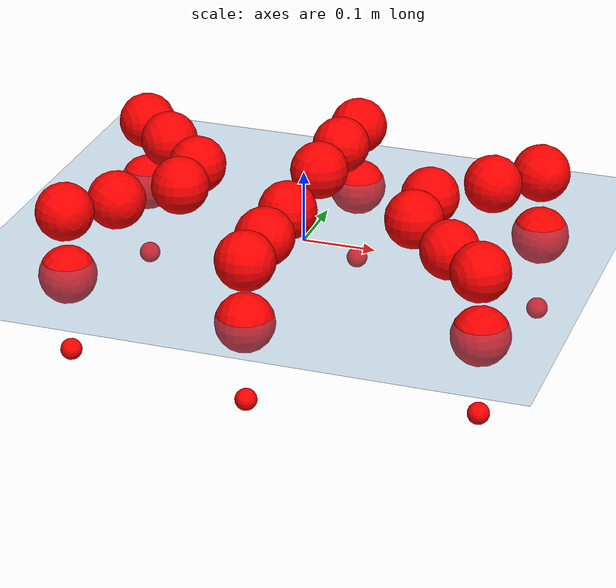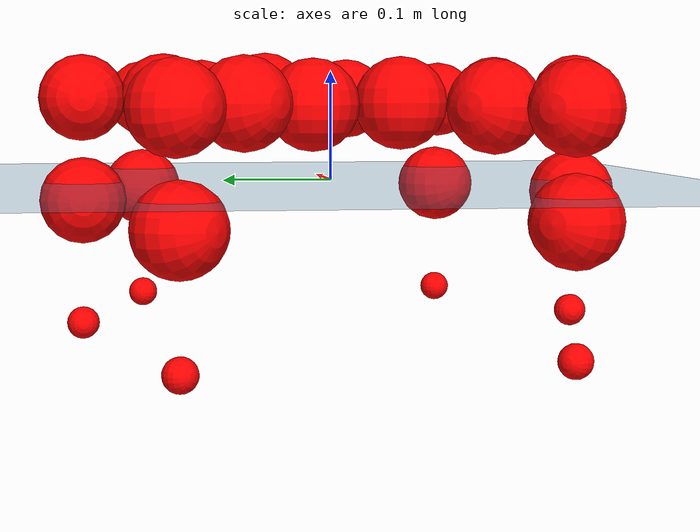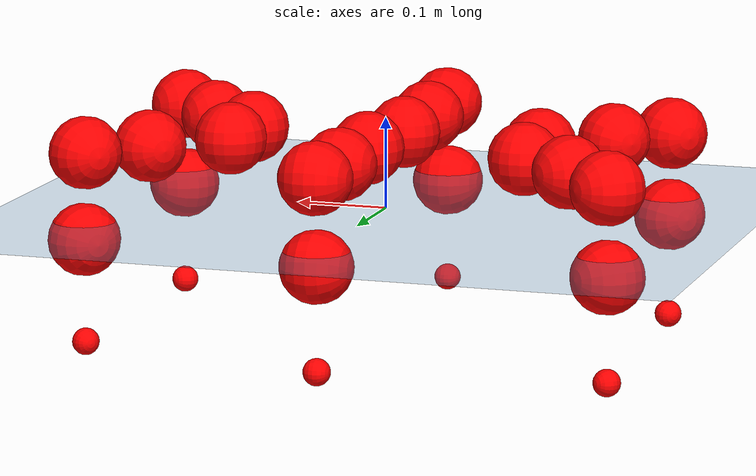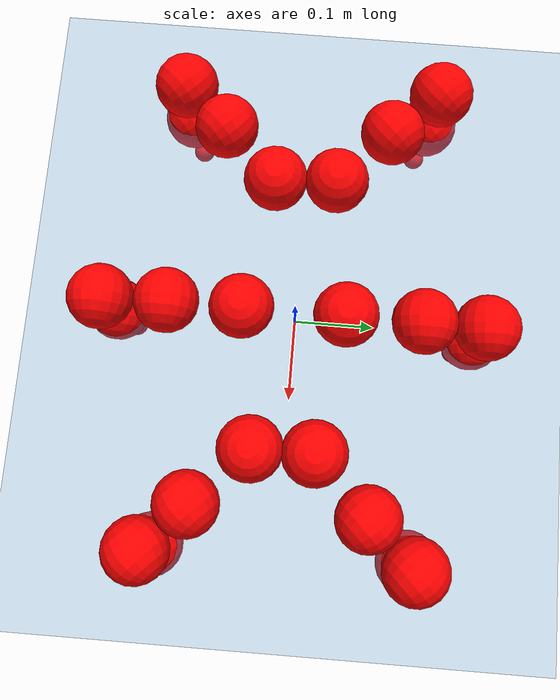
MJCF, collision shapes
<mujoco model="Golem">
  <compiler angle="radian" assetdir="assets" balanceinertia="true" inertiafromgeom="false"/>

  <option timestep="0.005" density="1.2" viscosity="2e-05"/>

  <size nkey="1"/>

  <visual>
    <quality shadowsize="8192"/>
    <map shadowclip="0.5"/>
  </visual>

  <default>
    <default class="/">
      <joint armature="0.01" damping="0.01" frictionloss="0.01"/>
      <geom contype="0" conaffinity="0" group="1" solref="-1000 -80"/>
      <site size="0.01 0.005 0.005" group="5"/>
      <general forcelimited="true" biastype="affine" gainprm="25" biasprm="0 -25 -0.5"/>
      <default class="visual">
        <geom type="mesh" group="2"/>
      </default>
      <default class="collision">
        <geom group="3"/>
      </default>
      <default class="foot">
        <geom size="0.01 0 0" condim="6" group="4" priority="1" solimp="0.015 1 0.01"/>
      </default>
      <default class="reward_collision_sphere">
        <geom group="5" rgba="1 0 0 1"/>
      </default>
    </default>
  </default>

  <asset>
    <texture type="skybox" colorspace="auto" name="//unnamed_texture_0" builtin="gradient" rgb1="0.95 0.95 0.95" rgb2="0.95 0.95 0.95" width="100" height="600"/>
    <texture type="2d" colorspace="auto" name="texplane" builtin="checker" rgb1="0.345 0.575 0.748" rgb2="0.345 0.575 0.748" markrgb="1 1 1" width="512" height="512"/>
    <material name="MatPlane" class="/" texture="texplane" texuniform="true" texrepeat="2 2" specular="0.9"/>
    <mesh name="body" class="/" file="body.stl" scale="0.001 0.001 0.001"/>
    <mesh name="coxa" class="/" file="coxa.stl" scale="0.001 0.001 0.001"/>
    <mesh name="femur" class="/" file="femur.stl" scale="0.001 0.001 0.001"/>
    <mesh name="tibia" class="/" file="tibia.stl" scale="0.001 0.001 0.001"/>
    <mesh name="tarsus" class="/" file="tarsus.stl" scale="0.001 0.001 0.001"/>
  </asset>

  <worldbody>
    <geom name="floor" class="/" size="100 100 0.125" type="plane" group="0" material="MatPlane"/>
    <light name="toplight_shadow" class="/" pos="0 0 5" dir="0.0990148 0.0990148 -0.990148" type="directional" ambient="0.04 0.04 0.04" diffuse="0.55 0.55 0.55" specular="0.12 0.12 0.12"/>
    <light name="toplight_fill" class="/" pos="0 0 5" dir="0.0990148 0.0990148 -0.990148" type="directional" castshadow="false" ambient="0.04 0.04 0.04" diffuse="0.3 0.3 0.3" specular="0.08 0.08 0.08"/>
    <body name="trunk" pos="-0.00124199 -0.000426949 -0.00247498" quat="1 0.000240287 -7.11672e-05 9.2127e-05">
      <inertial pos="0.00211915 -0.000375388 -0.000189088" quat="0.999915 -0.0117852 -0.00564813 4.8724e-05" mass="3.65468" diaginertia="0.0120421 0.00196769 0.0245652"/>
      <joint name="//unnamed_joint_0" type="free"/>
      <geom name="//unnamed_geom_1" class="/" pos="0 0 0.0765643" quat="1 0 0 0" type="mesh" rgba="0.9 0.9 0.9 1" mesh="body"/>
      <site name="imu" class="/" pos="0.133222 0.0038449 0.117389" size="0.00986508"/>
      <camera name="track" class="/" pos="0 -1.43698 0" quat="0.707107 0.707107 0 0" mode="trackcom"/>
      <camera name="ego_camera" class="/" pos="0.135813 0 0.119632" quat="-0.5 -0.5 0.5 0.5"/>
      <body name="coxa_RR" pos="-0.184235 -0.0583763 0.0754758" quat="0.382625 -3.56574e-05 -0.000343657 -0.923904">
        <inertial pos="-0.000848297 -0.00250288 -0.00020635" quat="0.999989 -0.00200448 0.00213227 -0.00376991" mass="0.186768" diaginertia="0.0117482 0.00193112 0.0238708"/>
        <joint name="coxa_joint_RR" class="/" pos="0 0 0" axis="-0.00468186 0.00315995 -0.999984" stiffness="0.00435186" range="-3.14374 3.09058" armature="0.00894961" damping="0.00639557" frictionloss="0.00937737"/>
        <geom name="//unnamed_geom_2" class="/" type="mesh" rgba="0.2 0.2 0.2 1" mesh="coxa"/>
        <geom name="//unnamed_geom_3" class="reward_collision_sphere" size="0.0394603" pos="-0.0313414 0 0"/>
        <body name="femur_RR" pos="0.0613534 0.00126529 -0.00228902" quat="0.500354 -0.500139 0.499712 0.499795">
          <inertial pos="0.000900246 0.00170192 -0.00176284" quat="0.999999 -0.000710121 -0.000818233 -0.00118886" mass="0.192204" diaginertia="0.012497 0.00194242 0.0247323"/>
          <joint name="femur_joint_RR" class="/" pos="0 0 0" axis="-0.000336958 0.000159987 -1" range="-3.15306 3.08499" armature="0.00863212" damping="0" frictionloss="0.0111343"/>
          <geom name="//unnamed_geom_4" class="/" type="mesh" rgba="0.9 0.9 0.9 1" mesh="femur"/>
          <geom name="//unnamed_geom_5" class="reward_collision_sphere" size="0.0394603"/>
          <body name="tibia_RR" pos="0.000734444 -0.0750038 0.00319485" quat="0.000554811 1 0.000303159 0.000323028">
            <inertial pos="-0.00272843 -0.00198496 -0.00016165" quat="0.999909 0.00581792 0.0117431 0.00310078" mass="0.192125" diaginertia="0.0121751 0.00195406 0.0251403"/>
            <joint name="tibia_joint_RR" class="/" pos="0 0 0" axis="0.00232376 0.00594346 0.99998" stiffness="0.00287409" range="-3.1914 3.12483" armature="0.00866967" damping="0" frictionloss="0.00946733"/>
            <geom name="//unnamed_geom_6" class="/" type="mesh" rgba="0.2 0.2 0.2 1" mesh="tibia"/>
            <geom name="//unnamed_geom_7" class="reward_collision_sphere" size="0.0394603"/>
            <body name="tarsus_RR" pos="0.09106 -0.000281051 -0.00153106" quat="1 -0.000210056 1.91894e-05 -0.000216191">
              <inertial pos="0.0611174 0.0030413 -0.00247959" quat="0.500501 0.501599 0.499298 0.498596" mass="0.190693" diaginertia="0.0121996 0.00192759 0.0240788"/>
              <joint name="tarsus_joint_RR" class="/" pos="0 0 0" axis="-0.00235982 0.00326255 0.999992" range="-3.16241 3.1426" armature="0.0113018" damping="0.00330382" frictionloss="0.0112226"/>
              <geom name="//unnamed_geom_8" class="/" type="mesh" rgba="0.9 0.9 0.9 1" mesh="tarsus"/>
              <geom name="foot_1" class="foot" size="0.00880206" pos="0.117008 0 0" quat="0 -0.707107 0 0.707107"/>
              <geom name="//unnamed_geom_10" class="reward_collision_sphere" size="0.0394603"/>
              <geom name="//unnamed_geom_11" class="reward_collision_sphere" size="0.0147976" pos="0.112307 0 0"/>
              <site name="foot_1" class="foot" pos="0.117008 0 0" quat="0 -0.707107 0 0.707107" size="0.00986508"/>
            </body>
          </body>
        </body>
      </body>
      <body name="coxa_RM" pos="0.000412002 -0.0951568 0.0749556" quat="0.706641 0.000591796 0.000786502 -0.707572">
        <inertial pos="-0.00272244 -6.75879e-05 -0.000811107" quat="0.999986 0.000860912 -0.00207261 -0.0047277" mass="0.18759" diaginertia="0.0122799 0.00187111 0.0244676"/>
        <joint name="coxa_joint_RM" class="/" pos="0 0 0" axis="-0.00132947 -1.3925e-05 -0.999999" range="-3.18522 3.13587" armature="0.00973135" damping="0.00963043" frictionloss="0.00989508"/>
        <geom name="//unnamed_geom_12" class="/" type="mesh" rgba="0.2 0.2 0.2 1" mesh="coxa"/>
        <geom name="//unnamed_geom_13" class="reward_collision_sphere" size="0.0394603" pos="-0.0313414 0 0"/>
        <body name="femur_RM" pos="0.0585071 0.000311044 0.00202154" quat="0.499726 -0.499309 0.499832 0.50113">
          <inertial pos="0.00107392 -0.000932649 0.000629575" quat="0.999903 -0.00110255 0.0134244 0.00357397" mass="0.198096" diaginertia="0.0128411 0.0019133 0.0255387"/>
          <joint name="femur_joint_RM" class="/" pos="0 0 0" axis="-0.00103547 0.000248553 -0.999999" range="-3.14983 3.13576" armature="0.00945435" damping="0.00682544" frictionloss="0.00953301"/>
          <geom name="//unnamed_geom_14" class="/" type="mesh" rgba="0.9 0.9 0.9 1" mesh="femur"/>
          <geom name="//unnamed_geom_15" class="reward_collision_sphere" size="0.0394603"/>
          <body name="tibia_RM" pos="-0.00233329 -0.0783098 0.00204656" quat="-0.000494738 1 0.000305582 -0.000218846">
            <inertial pos="-0.000259538 0.00194689 0.000106452" quat="0.999991 0.0028766 0.00278083 0.00139159" mass="0.197945" diaginertia="0.0128878 0.00197538 0.0258721"/>
            <joint name="tibia_joint_RM" class="/" pos="0 0 0" axis="-0.00941243 0.000730336 0.999955" range="-3.08992 3.10035" armature="0.0106028" damping="0.000888929" frictionloss="0.00976059"/>
            <geom name="//unnamed_geom_16" class="/" type="mesh" rgba="0.2 0.2 0.2 1" mesh="tibia"/>
            <geom name="//unnamed_geom_17" class="reward_collision_sphere" size="0.0394603"/>
            <body name="tarsus_RM" pos="0.0891732 -0.00269121 0.00244809" quat="0.999999 -0.00087629 -0.00098841 -2.36798e-05">
              <inertial pos="0.0635717 0.00268719 0.00065141" quat="0.499265 0.500222 0.500194 0.500318" mass="0.180489" diaginertia="0.0119923 0.00183128 0.0232778"/>
              <joint name="tarsus_joint_RM" class="/" pos="0 0 0" axis="-0.007568 -0.00616051 0.999952" stiffness="0.00157861" range="-3.1505 3.15779" armature="0.0108271" damping="0.00334837" frictionloss="0.00996555"/>
              <geom name="//unnamed_geom_18" class="/" type="mesh" rgba="0.9 0.9 0.9 1" mesh="tarsus"/>
              <geom name="foot_2" class="foot" size="0.0101341" pos="0.117008 0 0" quat="0 -0.707107 0 0.707107"/>
              <geom name="//unnamed_geom_20" class="reward_collision_sphere" size="0.0394603"/>
              <geom name="//unnamed_geom_21" class="reward_collision_sphere" size="0.0147976" pos="0.112307 0 0"/>
              <site name="foot_2" class="foot" pos="0.117008 0 0" quat="0 -0.707107 0 0.707107" size="0.00986508"/>
            </body>
          </body>
        </body>
      </body>
      <body name="coxa_RF" pos="0.188733 -0.0610196 0.0758193" quat="0.923878 0.00103526 0.000676879 -0.382684">
        <inertial pos="-0.00279281 -0.000805551 0.00288876" quat="0.999952 0.00617287 0.000132123 -0.00761736" mass="0.19653" diaginertia="0.0123791 0.00191463 0.0243426"/>
        <joint name="coxa_joint_RF" class="/" pos="0 0 0" axis="0.00264874 -0.00456754 -0.999986" range="-3.18102 3.14131" armature="0.00838527" damping="0.0169025" frictionloss="0.0109724"/>
        <geom name="//unnamed_geom_22" class="/" type="mesh" rgba="0.2 0.2 0.2 1" mesh="coxa"/>
        <geom name="//unnamed_geom_23" class="reward_collision_sphere" size="0.0394603" pos="-0.0313414 0 0"/>
        <body name="femur_RF" pos="0.0642116 0.000267836 -0.00273756" quat="0.500933 -0.499691 0.499047 0.500326">
          <inertial pos="0.00135684 -0.00145805 -0.000863625" quat="0.999987 0.00344247 -0.00115364 0.00348334" mass="0.18029" diaginertia="0.012502 0.00186494 0.0232429"/>
          <joint name="femur_joint_RF" class="/" pos="0 0 0" axis="0.000282105 0.00114633 -0.999999" range="-3.12581 3.0859" armature="0.0089536" damping="0" frictionloss="0.00874445"/>
          <geom name="//unnamed_geom_24" class="/" type="mesh" rgba="0.9 0.9 0.9 1" mesh="femur"/>
          <geom name="//unnamed_geom_25" class="reward_collision_sphere" size="0.0394603"/>
          <body name="tibia_RF" pos="-0.000946992 -0.0748669 0.00244796" quat="8.18785e-05 1 0.000129899 -4.4547e-05">
            <inertial pos="-0.00240233 0.000771124 -9.11519e-05" quat="0.999999 0.00032605 -0.000209205 0.000979189" mass="0.184632" diaginertia="0.0116661 0.00186028 0.0237557"/>
            <joint name="tibia_joint_RF" class="/" pos="0 0 0" axis="-0.00344944 -0.0100647 0.999943" range="-3.09532 3.13326" armature="0.00989393" damping="0" frictionloss="0.0108753"/>
            <geom name="//unnamed_geom_26" class="/" type="mesh" rgba="0.2 0.2 0.2 1" mesh="tibia"/>
            <geom name="//unnamed_geom_27" class="reward_collision_sphere" size="0.0394603"/>
            <body name="tarsus_RF" pos="0.0909404 0.000352283 -0.00273927" quat="0.999999 0.00114803 -0.000292167 -0.000502549">
              <inertial pos="0.0601625 -0.00203882 -0.000248234" quat="0.508047 0.496784 0.494553 0.500511" mass="0.186241" diaginertia="0.0121768 0.00193796 0.0233025"/>
              <joint name="tarsus_joint_RF" class="/" pos="0 0 0" axis="0.00448611 0.00934165 0.999946" range="-3.1288 3.13364" armature="0.00863795" damping="0" frictionloss="0.00848367"/>
              <geom name="//unnamed_geom_28" class="/" type="mesh" rgba="0.9 0.9 0.9 1" mesh="tarsus"/>
              <geom name="foot_3" class="foot" size="0.00989133" pos="0.117008 0 0" quat="0 -0.707107 0 0.707107"/>
              <geom name="//unnamed_geom_30" class="reward_collision_sphere" size="0.0394603"/>
              <geom name="//unnamed_geom_31" class="reward_collision_sphere" size="0.0147976" pos="0.112307 0 0"/>
              <site name="foot_3" class="foot" pos="0.117008 0 0" quat="0 -0.707107 0 0.707107" size="0.00986508"/>
            </body>
          </body>
        </body>
      </body>
      <body name="coxa_LR" pos="-0.187939 0.0613168 0.0740452" quat="0.382675 0.000221292 0.000131681 0.923883">
        <inertial pos="0.000808222 -0.00040152 0.000875643" quat="0.999919 0.0112052 0.00599072 -0.000546919" mass="0.191083" diaginertia="0.0125054 0.00198091 0.0244985"/>
        <joint name="coxa_joint_LR" class="/" pos="0 0 0" axis="-0.00388158 -0.011487 -0.999926" stiffness="0.0110618" range="-3.14947 3.16577" armature="0.0112901" damping="0.00967431" frictionloss="0.0100603"/>
        <geom name="//unnamed_geom_32" class="/" type="mesh" rgba="0.2 0.2 0.2 1" mesh="coxa"/>
        <geom name="//unnamed_geom_33" class="reward_collision_sphere" size="0.0394603" pos="-0.0313414 0 0"/>
        <body name="femur_LR" pos="0.0619623 0.00174998 0.00192979" quat="0.500038 -0.499637 0.499372 0.500951">
          <inertial pos="-0.0027707 -0.00260176 0.00249204" quat="1 -0.000430357 -0.000385315 0.000536881" mass="0.202569" diaginertia="0.012976 0.00202277 0.0249808"/>
          <joint name="femur_joint_LR" class="/" pos="0 0 0" axis="0.00129008 0.0133756 0.99991" range="-3.1918 3.0848" armature="0.0108334" damping="0" frictionloss="0.0084822"/>
          <geom name="//unnamed_geom_34" class="/" type="mesh" rgba="0.9 0.9 0.9 1" mesh="femur"/>
          <geom name="//unnamed_geom_35" class="reward_collision_sphere" size="0.0394603"/>
          <body name="tibia_LR" pos="0.00227305 -0.081325 -0.00117562" quat="5.77955e-06 1 -0.000366782 0.000218181">
            <inertial pos="-0.000449073 -0.00260725 0.000407554" quat="0.999966 -0.00614334 0.000884108 -0.00548668" mass="0.179432" diaginertia="0.0117147 0.00189555 0.0229753"/>
            <joint name="tibia_joint_LR" class="/" pos="0 0 0" axis="0.0029604 -0.0129948 -0.999911" range="-3.14109 3.08374" armature="0.00989597" damping="0" frictionloss="0.0111225"/>
            <geom name="//unnamed_geom_36" class="/" type="mesh" rgba="0.2 0.2 0.2 1" mesh="tibia"/>
            <geom name="//unnamed_geom_37" class="reward_collision_sphere" size="0.0394603"/>
            <body name="tarsus_LR" pos="0.0946278 -0.00174512 -0.0020277" quat="0.999999 0.000675067 0.000858405 0.00056398">
              <inertial pos="0.061573 0.00173495 -0.00263369" quat="0.499694 0.499838 0.500174 0.500294" mass="0.186671" diaginertia="0.0125205 0.00196841 0.0243309"/>
              <joint name="tarsus_joint_LR" class="/" pos="0 0 0" axis="-0.00211265 0.00705242 -0.999973" range="-3.1966 3.1577" armature="0.00843347" damping="0.0293394" frictionloss="0.00985382"/>
              <geom name="//unnamed_geom_38" class="/" type="mesh" rgba="0.9 0.9 0.9 1" mesh="tarsus"/>
              <geom name="foot_4" class="foot" size="0.00974076" pos="0.117008 0 0" quat="0.707107 0 -0.707107 0"/>
              <geom name="//unnamed_geom_40" class="reward_collision_sphere" size="0.0394603"/>
              <geom name="//unnamed_geom_41" class="reward_collision_sphere" size="0.0147976" pos="0.112307 0 0"/>
              <site name="foot_4" class="foot" pos="0.117008 0 0" quat="0.707107 0 -0.707107 0" size="0.00986508"/>
            </body>
          </body>
        </body>
      </body>
      <body name="coxa_LM" pos="0.0020314 0.0927908 0.0801817" quat="0.707106 3.36045e-05 5.88213e-05 0.707107">
        <inertial pos="0.00263434 0.000331149 0.00120216" quat="0.999963 -0.00722802 -0.000838358 -0.00458401" mass="0.186404" diaginertia="0.0129582 0.00189723 0.024551"/>
        <joint name="coxa_joint_LM" class="/" pos="0 0 0" axis="0.0124541 -1.32651e-05 -0.999922" range="-3.11493 3.18491" armature="0.00982185" damping="0.00163896" frictionloss="0.00959935"/>
        <geom name="//unnamed_geom_42" class="/" type="mesh" rgba="0.2 0.2 0.2 1" mesh="coxa"/>
        <geom name="//unnamed_geom_43" class="reward_collision_sphere" size="0.0394603" pos="-0.0313414 0 0"/>
        <body name="femur_LM" pos="0.0618202 -0.000741434 -0.000687" quat="0.500757 -0.500705 0.499173 0.499362">
          <inertial pos="0.00271432 0.00109625 -0.0025577" quat="0.999997 -0.00219749 -0.000231475 -0.0011394" mass="0.205129" diaginertia="0.0130051 0.00198265 0.0262312"/>
          <joint name="femur_joint_LM" class="/" pos="0 0 0" axis="0.0125885 -0.00108071 0.99992" stiffness="0.0101179" range="-3.19348 3.08551" armature="0.00998091" damping="0.00888095" frictionloss="0.0111208"/>
          <geom name="//unnamed_geom_44" class="/" type="mesh" rgba="0.9 0.9 0.9 1" mesh="femur"/>
          <geom name="//unnamed_geom_45" class="reward_collision_sphere" size="0.0394603"/>
          <body name="tibia_LM" pos="0.00101613 -0.0743089 -0.00200178" quat="-3.39034e-06 1 1.40246e-05 1.84131e-06">
            <inertial pos="0.00271254 0.000207364 0.000324902" quat="0.999996 0.00272814 -0.000723637 9.70278e-05" mass="0.199381" diaginertia="0.0126857 0.00190853 0.0258241"/>
            <joint name="tibia_joint_LM" class="/" pos="0 0 0" axis="0.00782675 0.00931312 -0.999926" range="-3.14146 3.1413" armature="0.00849181" damping="0" frictionloss="0.00969664"/>
            <geom name="//unnamed_geom_46" class="/" type="mesh" rgba="0.2 0.2 0.2 1" mesh="tibia"/>
            <geom name="//unnamed_geom_47" class="reward_collision_sphere" size="0.0394603"/>
            <body name="tarsus_LM" pos="0.0938586 -0.000665489 -0.000961366" quat="1 0.000115677 2.16147e-05 -1.411e-05">
              <inertial pos="0.0632703 0.000315442 0.00278178" quat="0.496821 0.496423 0.50618 0.500514" mass="0.189086" diaginertia="0.0120873 0.00198332 0.0243978"/>
              <joint name="tarsus_joint_LM" class="/" pos="0 0 0" axis="-0.00751648 0.00390254 -0.999964" range="-3.14384 3.141" armature="0.0101927" damping="0.01362" frictionloss="0.00976172"/>
              <geom name="//unnamed_geom_48" class="/" type="mesh" rgba="0.9 0.9 0.9 1" mesh="tarsus"/>
              <geom name="foot_5" class="foot" size="0.00912606" pos="0.117008 0 0" quat="0.707107 0 -0.707107 0"/>
              <geom name="//unnamed_geom_50" class="reward_collision_sphere" size="0.0394603"/>
              <geom name="//unnamed_geom_51" class="reward_collision_sphere" size="0.0147976" pos="0.112307 0 0"/>
              <site name="foot_5" class="foot" pos="0.117008 0 0" quat="0.707107 0 -0.707107 0" size="0.00986508"/>
            </body>
          </body>
        </body>
      </body>
      <body name="coxa_LF" pos="0.188495 0.0584087 0.0763593" quat="0.924149 0.000443653 0.00100721 0.382031">
        <inertial pos="-0.000235684 0.00045548 0.00287852" quat="0.999999 -0.0010501 0.00124987 -0.000480485" mass="0.189753" diaginertia="0.0126639 0.00184876 0.0243299"/>
        <joint name="coxa_joint_LF" class="/" pos="0 0 0" axis="0.0034125 0.0156732 -0.999871" range="-3.16066 3.11809" armature="0.00941628" damping="0.0213326" frictionloss="0.00848358"/>
        <geom name="//unnamed_geom_52" class="/" type="mesh" rgba="0.2 0.2 0.2 1" mesh="coxa"/>
        <geom name="//unnamed_geom_53" class="reward_collision_sphere" size="0.0394603" pos="-0.0313414 0 0"/>
        <body name="femur_LF" pos="0.063925 -0.00157732 -0.000241125" quat="0.499794 -0.50034 0.500112 0.499755">
          <inertial pos="-0.000113274 -5.8377e-05 0.00269929" quat="0.999919 -0.00763622 -0.00897294 -0.00474297" mass="0.196545" diaginertia="0.0120127 0.00192617 0.0243946"/>
          <joint name="femur_joint_LF" class="/" pos="0 0 0" axis="4.9478e-05 0.0152212 0.999884" stiffness="0.00218854" range="-3.16176 3.14226" armature="0.00968217" damping="0.00738156" frictionloss="0.011234"/>
          <geom name="//unnamed_geom_54" class="/" type="mesh" rgba="0.9 0.9 0.9 1" mesh="femur"/>
          <geom name="//unnamed_geom_55" class="reward_collision_sphere" size="0.0394603"/>
          <body name="tibia_LF" pos="7.66332e-05 -0.0769489 0.00268722" quat="0.000920728 0.999999 0.000546485 -0.000588316">
            <inertial pos="-0.000820938 3.05297e-05 -0.00258283" quat="0.999917 -0.0056598 -0.0115751 -0.000535233" mass="0.200753" diaginertia="0.0129392 0.00191356 0.0244758"/>
            <joint name="tibia_joint_LF" class="/" pos="0 0 0" axis="0.000305496 0.000678006 -1" range="-3.09917 3.16433" armature="0.0102867" damping="0.0159864" frictionloss="0.00987795"/>
            <geom name="//unnamed_geom_56" class="/" type="mesh" rgba="0.2 0.2 0.2 1" mesh="tibia"/>
            <geom name="//unnamed_geom_57" class="reward_collision_sphere" size="0.0394603"/>
            <body name="tarsus_LF" pos="0.0941792 0.00323365 -0.001374" quat="1 -0.000281772 -0.00052207 0.000549291">
              <inertial pos="0.0606102 4.31959e-05 0.000562967" quat="0.499969 0.499902 0.500161 0.499968" mass="0.181179" diaginertia="0.0117945 0.00180348 0.0243843"/>
              <joint name="tarsus_joint_LF" class="/" pos="0 0 0" axis="-0.00505847 0.0138705 -0.999891" range="-3.13921 3.08293" armature="0.0113263" damping="0.01914" frictionloss="0.0109462"/>
              <geom name="//unnamed_geom_58" class="/" type="mesh" rgba="0.9 0.9 0.9 1" mesh="tarsus"/>
              <geom name="foot_6" class="foot" size="0.00969857" pos="0.117008 0 0" quat="0.707107 0 -0.707107 0"/>
              <geom name="//unnamed_geom_60" class="reward_collision_sphere" size="0.0394603"/>
              <geom name="//unnamed_geom_61" class="reward_collision_sphere" size="0.0147976" pos="0.112307 0 0"/>
              <site name="foot_6" class="foot" pos="0.117008 0 0" quat="0.707107 0 -0.707107 0" size="0.00986508"/>
            </body>
          </body>
        </body>
      </body>
    </body>
  </worldbody>

  <contact>
    <pair class="/" geom1="floor" geom2="foot_1" name="//unnamed_contact_0"/>
    <pair class="/" geom1="floor" geom2="foot_2" name="//unnamed_contact_1"/>
    <pair class="/" geom1="floor" geom2="foot_3" name="//unnamed_contact_2"/>
    <pair class="/" geom1="floor" geom2="foot_4" name="//unnamed_contact_3"/>
    <pair class="/" geom1="floor" geom2="foot_5" name="//unnamed_contact_4"/>
    <pair class="/" geom1="floor" geom2="foot_6" name="//unnamed_contact_5"/>
  </contact>

  <actuator>
    <general name="coxa_joint_RR" class="/" joint="coxa_joint_RR" forcerange="-7.81698 7.81698" gainprm="23.2832" biasprm="0 -23.2832 -0.507603"/>
    <general name="femur_joint_RR" class="/" joint="femur_joint_RR" forcerange="-7.9253 7.9253" gainprm="23.2832" biasprm="0 -23.2832 -0.507603"/>
    <general name="tibia_joint_RR" class="/" joint="tibia_joint_RR" forcerange="-6.46345 6.46345" gainprm="23.2832" biasprm="0 -23.2832 -0.507603"/>
    <general name="tarsus_joint_RR" class="/" joint="tarsus_joint_RR" forcerange="-6.44713 6.44713" gainprm="23.2832" biasprm="0 -23.2832 -0.507603"/>
    <general name="coxa_joint_RM" class="/" joint="coxa_joint_RM" forcerange="-6.48047 6.48047" gainprm="23.2832" biasprm="0 -23.2832 -0.507603"/>
    <general name="femur_joint_RM" class="/" joint="femur_joint_RM" forcerange="-6.923 6.923" gainprm="23.2832" biasprm="0 -23.2832 -0.507603"/>
    <general name="tibia_joint_RM" class="/" joint="tibia_joint_RM" forcerange="-7.05504 7.05504" gainprm="23.2832" biasprm="0 -23.2832 -0.507603"/>
    <general name="tarsus_joint_RM" class="/" joint="tarsus_joint_RM" forcerange="-7.23056 7.23056" gainprm="23.2832" biasprm="0 -23.2832 -0.507603"/>
    <general name="coxa_joint_RF" class="/" joint="coxa_joint_RF" forcerange="-6.9894 6.9894" gainprm="23.2832" biasprm="0 -23.2832 -0.507603"/>
    <general name="femur_joint_RF" class="/" joint="femur_joint_RF" forcerange="-7.7679 7.7679" gainprm="23.2832" biasprm="0 -23.2832 -0.507603"/>
    <general name="tibia_joint_RF" class="/" joint="tibia_joint_RF" forcerange="-7.90578 7.90578" gainprm="23.2832" biasprm="0 -23.2832 -0.507603"/>
    <general name="tarsus_joint_RF" class="/" joint="tarsus_joint_RF" forcerange="-7.94147 7.94147" gainprm="23.2832" biasprm="0 -23.2832 -0.507603"/>
    <general name="coxa_joint_LR" class="/" joint="coxa_joint_LR" forcerange="-7.12506 7.12506" gainprm="23.2832" biasprm="0 -23.2832 -0.507603"/>
    <general name="femur_joint_LR" class="/" joint="femur_joint_LR" forcerange="-7.3479 7.3479" gainprm="23.2832" biasprm="0 -23.2832 -0.507603"/>
    <general name="tibia_joint_LR" class="/" joint="tibia_joint_LR" forcerange="-7.80785 7.80785" gainprm="23.2832" biasprm="0 -23.2832 -0.507603"/>
    <general name="tarsus_joint_LR" class="/" joint="tarsus_joint_LR" forcerange="-7.90457 7.90457" gainprm="23.2832" biasprm="0 -23.2832 -0.507603"/>
    <general name="coxa_joint_LM" class="/" joint="coxa_joint_LM" forcerange="-7.14933 7.14933" gainprm="23.2832" biasprm="0 -23.2832 -0.507603"/>
    <general name="femur_joint_LM" class="/" joint="femur_joint_LM" forcerange="-7.45072 7.45072" gainprm="23.2832" biasprm="0 -23.2832 -0.507603"/>
    <general name="tibia_joint_LM" class="/" joint="tibia_joint_LM" forcerange="-7.18212 7.18212" gainprm="23.2832" biasprm="0 -23.2832 -0.507603"/>
    <general name="tarsus_joint_LM" class="/" joint="tarsus_joint_LM" forcerange="-6.99641 6.99641" gainprm="23.2832" biasprm="0 -23.2832 -0.507603"/>
    <general name="coxa_joint_LF" class="/" joint="coxa_joint_LF" forcerange="-7.26343 7.26343" gainprm="23.2832" biasprm="0 -23.2832 -0.507603"/>
    <general name="femur_joint_LF" class="/" joint="femur_joint_LF" forcerange="-7.94908 7.94908" gainprm="23.2832" biasprm="0 -23.2832 -0.507603"/>
    <general name="tibia_joint_LF" class="/" joint="tibia_joint_LF" forcerange="-7.95809 7.95809" gainprm="23.2832" biasprm="0 -23.2832 -0.507603"/>
    <general name="tarsus_joint_LF" class="/" joint="tarsus_joint_LF" forcerange="-6.97206 6.97206" gainprm="23.2832" biasprm="0 -23.2832 -0.507603"/>
  </actuator>

  <sensor>
    <gyro site="imu" name="imu_angular_velocity"/>
    <velocimeter site="imu" name="imu_linear_velocity"/>
    <framelinvel objtype="site" objname="foot_1" name="foot_1_global_linear_velocity"/>
    <framelinvel objtype="site" objname="foot_2" name="foot_2_global_linear_velocity"/>
    <framelinvel objtype="site" objname="foot_3" name="foot_3_global_linear_velocity"/>
    <framelinvel objtype="site" objname="foot_4" name="foot_4_global_linear_velocity"/>
    <framelinvel objtype="site" objname="foot_5" name="foot_5_global_linear_velocity"/>
    <framelinvel objtype="site" objname="foot_6" name="foot_6_global_linear_velocity"/>
  </sensor>

  <keyframe>
    <key name="home" qpos="0 0 0.1457 1 0 0 0 0 0 0 0 0 0 0 0 0 0 0 0 0 0 0 0 0 0 0 0 0 0 0 0"/>
  </keyframe>
</mujoco>
